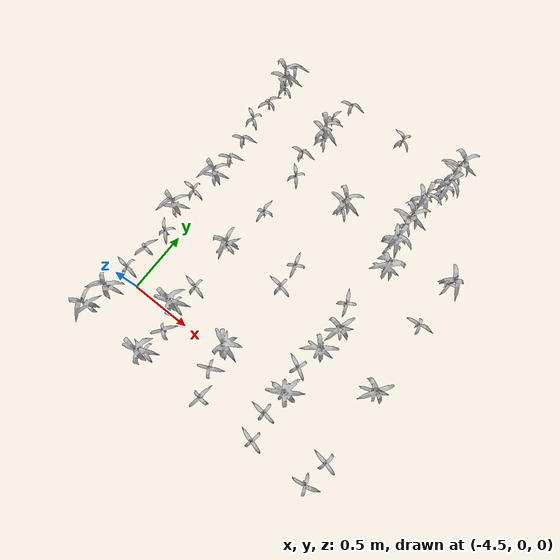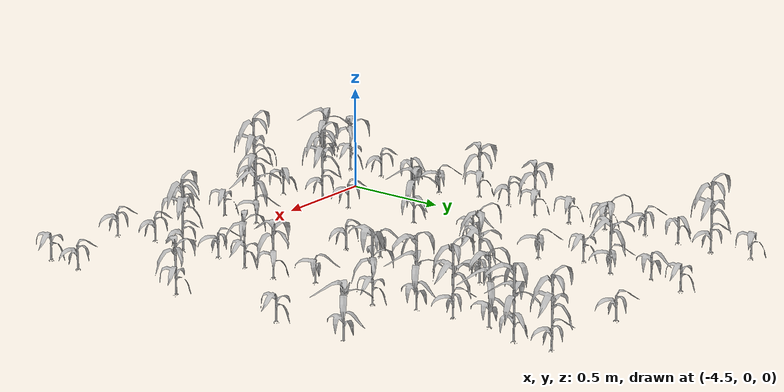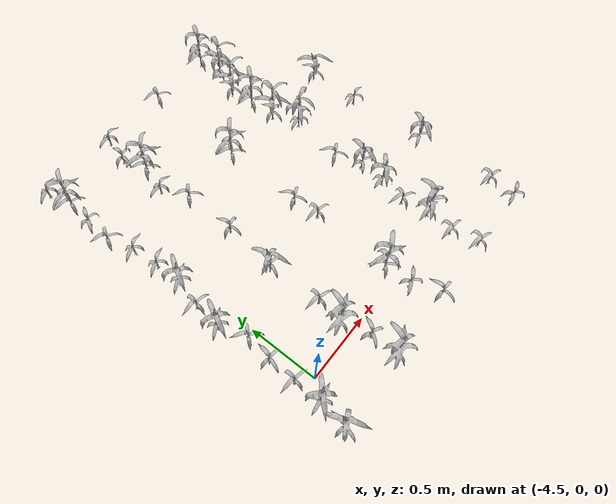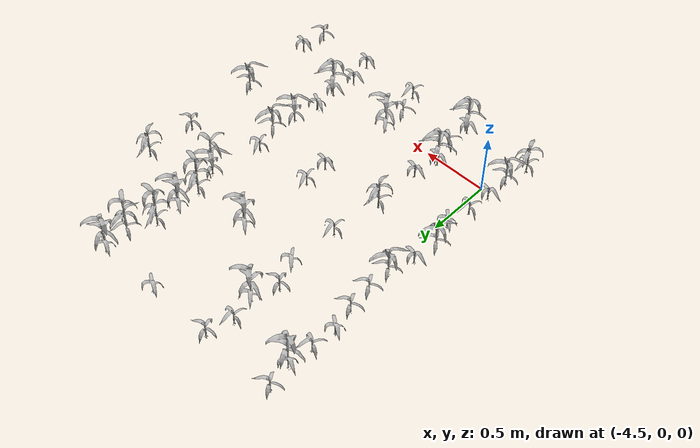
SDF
<sdf version="1.7">
 <world name="default">
  <model name="maize_-4.641265424464105_-0.3149999999999995">
   <static>1</static>
   <link name="link">
    <inertial>
     <mass>0.2</mass>
     <inertia>
      <ixx>0.166667</ixx>
      <ixy>0</ixy>
      <ixz>0</ixz>
      <iyy>0.166667</iyy>
      <iyz>0</iyz>
      <izz>0.166667</izz>
     </inertia>
    </inertial>
    <collision name="collision">
     <geometry><mesh><uri>model://corn_4/meshes/corn.dae</uri><scale>0.25 0.25 0.25</scale></mesh></geometry>
     <surface>
      <friction><ode><mu>0</mu><mu2>0</mu2></ode></friction>
      <contact><ode><kp>0</kp><kd>0</kd><max_vel>0</max_vel><min_depth>0.002</min_depth></ode></contact>
     </surface>
    </collision>
    <visual name="visual">
     <geometry><mesh><uri>model://corn_4/meshes/corn.dae</uri><scale>0.25 0.25 0.25</scale></mesh></geometry>
    </visual>
    <velocity_decay><linear>0</linear><angular>0</angular></velocity_decay>
   </link>
   <pose>-4.64126 -0.315 0.05 0 -0 1.39302</pose>
  </model>
  <model name="maize_-4.607150826464587_-0.1200000000000001">
   <static>1</static>
   <link name="link">
    <inertial>
     <mass>0.2</mass>
     <inertia>
      <ixx>0.166667</ixx>
      <ixy>0</ixy>
      <ixz>0</ixz>
      <iyy>0.166667</iyy>
      <iyz>0</iyz>
      <izz>0.166667</izz>
     </inertia>
    </inertial>
    <collision name="collision">
     <geometry><mesh><uri>model://corn_4/meshes/corn.dae</uri><scale>0.25 0.25 0.25</scale></mesh></geometry>
     <surface>
      <friction><ode><mu>0</mu><mu2>0</mu2></ode></friction>
      <contact><ode><kp>0</kp><kd>0</kd><max_vel>0</max_vel><min_depth>0.002</min_depth></ode></contact>
     </surface>
    </collision>
    <visual name="visual">
     <geometry><mesh><uri>model://corn_4/meshes/corn.dae</uri><scale>0.25 0.25 0.25</scale></mesh></geometry>
    </visual>
    <velocity_decay><linear>0</linear><angular>0</angular></velocity_decay>
   </link>
   <pose>-4.60715 -0.12 0.05 0 -0 0.20456</pose>
  </model>
  <model name="maize_-4.609371521306536_0.07500000000000018">
   <static>1</static>
   <link name="link">
    <inertial>
     <mass>0.2</mass>
     <inertia>
      <ixx>0.166667</ixx>
      <ixy>0</ixy>
      <ixz>0</ixz>
      <iyy>0.166667</iyy>
      <iyz>0</iyz>
      <izz>0.166667</izz>
     </inertia>
    </inertial>
    <collision name="collision">
     <geometry><mesh><uri>model://corn_3/meshes/corn.dae</uri><scale>0.25 0.25 0.25</scale></mesh></geometry>
     <surface>
      <friction><ode><mu>0</mu><mu2>0</mu2></ode></friction>
      <contact><ode><kp>0</kp><kd>0</kd><max_vel>0</max_vel><min_depth>0.002</min_depth></ode></contact>
     </surface>
    </collision>
    <visual name="visual">
     <geometry><mesh><uri>model://corn_3/meshes/corn.dae</uri><scale>0.25 0.25 0.25</scale></mesh></geometry>
    </visual>
    <velocity_decay><linear>0</linear><angular>0</angular></velocity_decay>
   </link>
   <pose>-4.60937 0.075 0.05 0 -0 3.04615</pose>
  </model>
  <model name="maize_-4.602589979055056_0.27000000000000046">
   <static>1</static>
   <link name="link">
    <inertial>
     <mass>0.2</mass>
     <inertia>
      <ixx>0.166667</ixx>
      <ixy>0</ixy>
      <ixz>0</ixz>
      <iyy>0.166667</iyy>
      <iyz>0</iyz>
      <izz>0.166667</izz>
     </inertia>
    </inertial>
    <collision name="collision">
     <geometry><mesh><uri>model://corn_3/meshes/corn.dae</uri><scale>0.25 0.25 0.25</scale></mesh></geometry>
     <surface>
      <friction><ode><mu>0</mu><mu2>0</mu2></ode></friction>
      <contact><ode><kp>0</kp><kd>0</kd><max_vel>0</max_vel><min_depth>0.002</min_depth></ode></contact>
     </surface>
    </collision>
    <visual name="visual">
     <geometry><mesh><uri>model://corn_3/meshes/corn.dae</uri><scale>0.25 0.25 0.25</scale></mesh></geometry>
    </visual>
    <velocity_decay><linear>0</linear><angular>0</angular></velocity_decay>
   </link>
   <pose>-4.60259 0.27 0.05 0 -0 1.35027</pose>
  </model>
  <model name="maize_-4.570653018177786_0.46500000000000075">
   <static>1</static>
   <link name="link">
    <inertial>
     <mass>0.2</mass>
     <inertia>
      <ixx>0.166667</ixx>
      <ixy>0</ixy>
      <ixz>0</ixz>
      <iyy>0.166667</iyy>
      <iyz>0</iyz>
      <izz>0.166667</izz>
     </inertia>
    </inertial>
    <collision name="collision">
     <geometry><mesh><uri>model://corn_3/meshes/corn.dae</uri><scale>0.25 0.25 0.25</scale></mesh></geometry>
     <surface>
      <friction><ode><mu>0</mu><mu2>0</mu2></ode></friction>
      <contact><ode><kp>0</kp><kd>0</kd><max_vel>0</max_vel><min_depth>0.002</min_depth></ode></contact>
     </surface>
    </collision>
    <visual name="visual">
     <geometry><mesh><uri>model://corn_3/meshes/corn.dae</uri><scale>0.25 0.25 0.25</scale></mesh></geometry>
    </visual>
    <velocity_decay><linear>0</linear><angular>0</angular></velocity_decay>
   </link>
   <pose>-4.57065 0.465 0.05 0 -0 2.42042</pose>
  </model>
  <model name="maize_-4.63863826151183_0.6600000000000001">
   <static>1</static>
   <link name="link">
    <inertial>
     <mass>0.2</mass>
     <inertia>
      <ixx>0.166667</ixx>
      <ixy>0</ixy>
      <ixz>0</ixz>
      <iyy>0.166667</iyy>
      <iyz>0</iyz>
      <izz>0.166667</izz>
     </inertia>
    </inertial>
    <collision name="collision">
     <geometry><mesh><uri>model://corn_4/meshes/corn.dae</uri><scale>0.25 0.25 0.25</scale></mesh></geometry>
     <surface>
      <friction><ode><mu>0</mu><mu2>0</mu2></ode></friction>
      <contact><ode><kp>0</kp><kd>0</kd><max_vel>0</max_vel><min_depth>0.002</min_depth></ode></contact>
     </surface>
    </collision>
    <visual name="visual">
     <geometry><mesh><uri>model://corn_4/meshes/corn.dae</uri><scale>0.25 0.25 0.25</scale></mesh></geometry>
    </visual>
    <velocity_decay><linear>0</linear><angular>0</angular></velocity_decay>
   </link>
   <pose>-4.63864 0.66 0.05 0 -0 0.585221</pose>
  </model>
  <model name="maize_-4.616977580214433_0.8550000000000004">
   <static>1</static>
   <link name="link">
    <inertial>
     <mass>0.2</mass>
     <inertia>
      <ixx>0.166667</ixx>
      <ixy>0</ixy>
      <ixz>0</ixz>
      <iyy>0.166667</iyy>
      <iyz>0</iyz>
      <izz>0.166667</izz>
     </inertia>
    </inertial>
    <collision name="collision">
     <geometry><mesh><uri>model://corn_3/meshes/corn.dae</uri><scale>0.25 0.25 0.25</scale></mesh></geometry>
     <surface>
      <friction><ode><mu>0</mu><mu2>0</mu2></ode></friction>
      <contact><ode><kp>0</kp><kd>0</kd><max_vel>0</max_vel><min_depth>0.002</min_depth></ode></contact>
     </surface>
    </collision>
    <visual name="visual">
     <geometry><mesh><uri>model://corn_3/meshes/corn.dae</uri><scale>0.25 0.25 0.25</scale></mesh></geometry>
    </visual>
    <velocity_decay><linear>0</linear><angular>0</angular></velocity_decay>
   </link>
   <pose>-4.61698 0.855 0.05 0 -0 3.05886</pose>
  </model>
  <model name="maize_-4.561774898540121_1.0500000000000007">
   <static>1</static>
   <link name="link">
    <inertial>
     <mass>0.2</mass>
     <inertia>
      <ixx>0.166667</ixx>
      <ixy>0</ixy>
      <ixz>0</ixz>
      <iyy>0.166667</iyy>
      <iyz>0</iyz>
      <izz>0.166667</izz>
     </inertia>
    </inertial>
    <collision name="collision">
     <geometry><mesh><uri>model://corn_4/meshes/corn.dae</uri><scale>0.25 0.25 0.25</scale></mesh></geometry>
     <surface>
      <friction><ode><mu>0</mu><mu2>0</mu2></ode></friction>
      <contact><ode><kp>0</kp><kd>0</kd><max_vel>0</max_vel><min_depth>0.002</min_depth></ode></contact>
     </surface>
    </collision>
    <visual name="visual">
     <geometry><mesh><uri>model://corn_4/meshes/corn.dae</uri><scale>0.25 0.25 0.25</scale></mesh></geometry>
    </visual>
    <velocity_decay><linear>0</linear><angular>0</angular></velocity_decay>
   </link>
   <pose>-4.56177 1.05 0.05 0 -0 0.518835</pose>
  </model>
  <model name="maize_-4.569922193897871_1.245">
   <static>1</static>
   <link name="link">
    <inertial>
     <mass>0.2</mass>
     <inertia>
      <ixx>0.166667</ixx>
      <ixy>0</ixy>
      <ixz>0</ixz>
      <iyy>0.166667</iyy>
      <iyz>0</iyz>
      <izz>0.166667</izz>
     </inertia>
    </inertial>
    <collision name="collision">
     <geometry><mesh><uri>model://corn_3/meshes/corn.dae</uri><scale>0.25 0.25 0.25</scale></mesh></geometry>
     <surface>
      <friction><ode><mu>0</mu><mu2>0</mu2></ode></friction>
      <contact><ode><kp>0</kp><kd>0</kd><max_vel>0</max_vel><min_depth>0.002</min_depth></ode></contact>
     </surface>
    </collision>
    <visual name="visual">
     <geometry><mesh><uri>model://corn_3/meshes/corn.dae</uri><scale>0.25 0.25 0.25</scale></mesh></geometry>
    </visual>
    <velocity_decay><linear>0</linear><angular>0</angular></velocity_decay>
   </link>
   <pose>-4.56992 1.245 0.05 0 -0 0.488933</pose>
  </model>
  <model name="maize_-4.58929504737528_1.4400000000000004">
   <static>1</static>
   <link name="link">
    <inertial>
     <mass>0.2</mass>
     <inertia>
      <ixx>0.166667</ixx>
      <ixy>0</ixy>
      <ixz>0</ixz>
      <iyy>0.166667</iyy>
      <iyz>0</iyz>
      <izz>0.166667</izz>
     </inertia>
    </inertial>
    <collision name="collision">
     <geometry><mesh><uri>model://corn_3/meshes/corn.dae</uri><scale>0.25 0.25 0.25</scale></mesh></geometry>
     <surface>
      <friction><ode><mu>0</mu><mu2>0</mu2></ode></friction>
      <contact><ode><kp>0</kp><kd>0</kd><max_vel>0</max_vel><min_depth>0.002</min_depth></ode></contact>
     </surface>
    </collision>
    <visual name="visual">
     <geometry><mesh><uri>model://corn_3/meshes/corn.dae</uri><scale>0.25 0.25 0.25</scale></mesh></geometry>
    </visual>
    <velocity_decay><linear>0</linear><angular>0</angular></velocity_decay>
   </link>
   <pose>-4.58929 1.44 0.05 0 -0 0.408999</pose>
  </model>
  <model name="maize_-4.639935727970333_1.6350000000000007">
   <static>1</static>
   <link name="link">
    <inertial>
     <mass>0.2</mass>
     <inertia>
      <ixx>0.166667</ixx>
      <ixy>0</ixy>
      <ixz>0</ixz>
      <iyy>0.166667</iyy>
      <iyz>0</iyz>
      <izz>0.166667</izz>
     </inertia>
    </inertial>
    <collision name="collision">
     <geometry><mesh><uri>model://corn_3/meshes/corn.dae</uri><scale>0.25 0.25 0.25</scale></mesh></geometry>
     <surface>
      <friction><ode><mu>0</mu><mu2>0</mu2></ode></friction>
      <contact><ode><kp>0</kp><kd>0</kd><max_vel>0</max_vel><min_depth>0.002</min_depth></ode></contact>
     </surface>
    </collision>
    <visual name="visual">
     <geometry><mesh><uri>model://corn_3/meshes/corn.dae</uri><scale>0.25 0.25 0.25</scale></mesh></geometry>
    </visual>
    <velocity_decay><linear>0</linear><angular>0</angular></velocity_decay>
   </link>
   <pose>-4.63994 1.635 0.05 0 -0 2.59627</pose>
  </model>
  <model name="maize_-4.6269057923029315_1.83">
   <static>1</static>
   <link name="link">
    <inertial>
     <mass>0.2</mass>
     <inertia>
      <ixx>0.166667</ixx>
      <ixy>0</ixy>
      <ixz>0</ixz>
      <iyy>0.166667</iyy>
      <iyz>0</iyz>
      <izz>0.166667</izz>
     </inertia>
    </inertial>
    <collision name="collision">
     <geometry><mesh><uri>model://corn_3/meshes/corn.dae</uri><scale>0.25 0.25 0.25</scale></mesh></geometry>
     <surface>
      <friction><ode><mu>0</mu><mu2>0</mu2></ode></friction>
      <contact><ode><kp>0</kp><kd>0</kd><max_vel>0</max_vel><min_depth>0.002</min_depth></ode></contact>
     </surface>
    </collision>
    <visual name="visual">
     <geometry><mesh><uri>model://corn_3/meshes/corn.dae</uri><scale>0.25 0.25 0.25</scale></mesh></geometry>
    </visual>
    <velocity_decay><linear>0</linear><angular>0</angular></velocity_decay>
   </link>
   <pose>-4.62691 1.83 0.05 0 -0 1.14885</pose>
  </model>
  <model name="maize_-4.6076522750928195_2.0250000000000004">
   <static>1</static>
   <link name="link">
    <inertial>
     <mass>0.2</mass>
     <inertia>
      <ixx>0.166667</ixx>
      <ixy>0</ixy>
      <ixz>0</ixz>
      <iyy>0.166667</iyy>
      <iyz>0</iyz>
      <izz>0.166667</izz>
     </inertia>
    </inertial>
    <collision name="collision">
     <geometry><mesh><uri>model://corn_5/meshes/corn.dae</uri><scale>0.25 0.25 0.25</scale></mesh></geometry>
     <surface>
      <friction><ode><mu>0</mu><mu2>0</mu2></ode></friction>
      <contact><ode><kp>0</kp><kd>0</kd><max_vel>0</max_vel><min_depth>0.002</min_depth></ode></contact>
     </surface>
    </collision>
    <visual name="visual">
     <geometry><mesh><uri>model://corn_5/meshes/corn.dae</uri><scale>0.25 0.25 0.25</scale></mesh></geometry>
    </visual>
    <velocity_decay><linear>0</linear><angular>0</angular></velocity_decay>
   </link>
   <pose>-4.60765 2.025 0.05 0 -0 2.78431</pose>
  </model>
  <model name="maize_-4.648252382986778_2.2200000000000006">
   <static>1</static>
   <link name="link">
    <inertial>
     <mass>0.2</mass>
     <inertia>
      <ixx>0.166667</ixx>
      <ixy>0</ixy>
      <ixz>0</ixz>
      <iyy>0.166667</iyy>
      <iyz>0</iyz>
      <izz>0.166667</izz>
     </inertia>
    </inertial>
    <collision name="collision">
     <geometry><mesh><uri>model://corn_3/meshes/corn.dae</uri><scale>0.25 0.25 0.25</scale></mesh></geometry>
     <surface>
      <friction><ode><mu>0</mu><mu2>0</mu2></ode></friction>
      <contact><ode><kp>0</kp><kd>0</kd><max_vel>0</max_vel><min_depth>0.002</min_depth></ode></contact>
     </surface>
    </collision>
    <visual name="visual">
     <geometry><mesh><uri>model://corn_3/meshes/corn.dae</uri><scale>0.25 0.25 0.25</scale></mesh></geometry>
    </visual>
    <velocity_decay><linear>0</linear><angular>0</angular></velocity_decay>
   </link>
   <pose>-4.64825 2.22 0.05 0 -0 0.483202</pose>
  </model>
  <model name="maize_-4.094737946050595_-0.3149999999999995">
   <static>1</static>
   <link name="link">
    <inertial>
     <mass>0.2</mass>
     <inertia>
      <ixx>0.166667</ixx>
      <ixy>0</ixy>
      <ixz>0</ixz>
      <iyy>0.166667</iyy>
      <iyz>0</iyz>
      <izz>0.166667</izz>
     </inertia>
    </inertial>
    <collision name="collision">
     <geometry><mesh><uri>model://corn_5/meshes/corn.dae</uri><scale>0.25 0.25 0.25</scale></mesh></geometry>
     <surface>
      <friction><ode><mu>0</mu><mu2>0</mu2></ode></friction>
      <contact><ode><kp>0</kp><kd>0</kd><max_vel>0</max_vel><min_depth>0.002</min_depth></ode></contact>
     </surface>
    </collision>
    <visual name="visual">
     <geometry><mesh><uri>model://corn_5/meshes/corn.dae</uri><scale>0.25 0.25 0.25</scale></mesh></geometry>
    </visual>
    <velocity_decay><linear>0</linear><angular>0</angular></velocity_decay>
   </link>
   <pose>-4.09474 -0.315 0.05 0 -0 2.97912</pose>
  </model>
  <model name="maize_-4.0847048664978685_-0.1200000000000001">
   <static>1</static>
   <link name="link">
    <inertial>
     <mass>0.2</mass>
     <inertia>
      <ixx>0.166667</ixx>
      <ixy>0</ixy>
      <ixz>0</ixz>
      <iyy>0.166667</iyy>
      <iyz>0</iyz>
      <izz>0.166667</izz>
     </inertia>
    </inertial>
    <collision name="collision">
     <geometry><mesh><uri>model://corn_3/meshes/corn.dae</uri><scale>0.25 0.25 0.25</scale></mesh></geometry>
     <surface>
      <friction><ode><mu>0</mu><mu2>0</mu2></ode></friction>
      <contact><ode><kp>0</kp><kd>0</kd><max_vel>0</max_vel><min_depth>0.002</min_depth></ode></contact>
     </surface>
    </collision>
    <visual name="visual">
     <geometry><mesh><uri>model://corn_3/meshes/corn.dae</uri><scale>0.25 0.25 0.25</scale></mesh></geometry>
    </visual>
    <velocity_decay><linear>0</linear><angular>0</angular></velocity_decay>
   </link>
   <pose>-4.0847 -0.12 0.05 0 -0 0.978531</pose>
  </model>
  <model name="maize_-4.14703841915191_0.07500000000000018">
   <static>1</static>
   <link name="link">
    <inertial>
     <mass>0.2</mass>
     <inertia>
      <ixx>0.166667</ixx>
      <ixy>0</ixy>
      <ixz>0</ixz>
      <iyy>0.166667</iyy>
      <iyz>0</iyz>
      <izz>0.166667</izz>
     </inertia>
    </inertial>
    <collision name="collision">
     <geometry><mesh><uri>model://corn_5/meshes/corn.dae</uri><scale>0.25 0.25 0.25</scale></mesh></geometry>
     <surface>
      <friction><ode><mu>0</mu><mu2>0</mu2></ode></friction>
      <contact><ode><kp>0</kp><kd>0</kd><max_vel>0</max_vel><min_depth>0.002</min_depth></ode></contact>
     </surface>
    </collision>
    <visual name="visual">
     <geometry><mesh><uri>model://corn_5/meshes/corn.dae</uri><scale>0.25 0.25 0.25</scale></mesh></geometry>
    </visual>
    <velocity_decay><linear>0</linear><angular>0</angular></velocity_decay>
   </link>
   <pose>-4.14704 0.075 0.05 0 -0 2.95774</pose>
  </model>
  <model name="maize_-4.105810107287696_0.27000000000000046">
   <static>1</static>
   <link name="link">
    <inertial>
     <mass>0.2</mass>
     <inertia>
      <ixx>0.166667</ixx>
      <ixy>0</ixy>
      <ixz>0</ixz>
      <iyy>0.166667</iyy>
      <iyz>0</iyz>
      <izz>0.166667</izz>
     </inertia>
    </inertial>
    <collision name="collision">
     <geometry><mesh><uri>model://corn_3/meshes/corn.dae</uri><scale>0.25 0.25 0.25</scale></mesh></geometry>
     <surface>
      <friction><ode><mu>0</mu><mu2>0</mu2></ode></friction>
      <contact><ode><kp>0</kp><kd>0</kd><max_vel>0</max_vel><min_depth>0.002</min_depth></ode></contact>
     </surface>
    </collision>
    <visual name="visual">
     <geometry><mesh><uri>model://corn_3/meshes/corn.dae</uri><scale>0.25 0.25 0.25</scale></mesh></geometry>
    </visual>
    <velocity_decay><linear>0</linear><angular>0</angular></velocity_decay>
   </link>
   <pose>-4.10581 0.27 0.05 0 -0 2.96152</pose>
  </model>
  <model name="maize_-4.116764497974255_0.6600000000000001">
   <static>1</static>
   <link name="link">
    <inertial>
     <mass>0.2</mass>
     <inertia>
      <ixx>0.166667</ixx>
      <ixy>0</ixy>
      <ixz>0</ixz>
      <iyy>0.166667</iyy>
      <iyz>0</iyz>
      <izz>0.166667</izz>
     </inertia>
    </inertial>
    <collision name="collision">
     <geometry><mesh><uri>model://corn_4/meshes/corn.dae</uri><scale>0.25 0.25 0.25</scale></mesh></geometry>
     <surface>
      <friction><ode><mu>0</mu><mu2>0</mu2></ode></friction>
      <contact><ode><kp>0</kp><kd>0</kd><max_vel>0</max_vel><min_depth>0.002</min_depth></ode></contact>
     </surface>
    </collision>
    <visual name="visual">
     <geometry><mesh><uri>model://corn_4/meshes/corn.dae</uri><scale>0.25 0.25 0.25</scale></mesh></geometry>
    </visual>
    <velocity_decay><linear>0</linear><angular>0</angular></velocity_decay>
   </link>
   <pose>-4.11676 0.66 0.05 0 -0 1.27382</pose>
  </model>
  <model name="maize_-4.066907764565944_1.0500000000000007">
   <static>1</static>
   <link name="link">
    <inertial>
     <mass>0.2</mass>
     <inertia>
      <ixx>0.166667</ixx>
      <ixy>0</ixy>
      <ixz>0</ixz>
      <iyy>0.166667</iyy>
      <iyz>0</iyz>
      <izz>0.166667</izz>
     </inertia>
    </inertial>
    <collision name="collision">
     <geometry><mesh><uri>model://corn_3/meshes/corn.dae</uri><scale>0.25 0.25 0.25</scale></mesh></geometry>
     <surface>
      <friction><ode><mu>0</mu><mu2>0</mu2></ode></friction>
      <contact><ode><kp>0</kp><kd>0</kd><max_vel>0</max_vel><min_depth>0.002</min_depth></ode></contact>
     </surface>
    </collision>
    <visual name="visual">
     <geometry><mesh><uri>model://corn_3/meshes/corn.dae</uri><scale>0.25 0.25 0.25</scale></mesh></geometry>
    </visual>
    <velocity_decay><linear>0</linear><angular>0</angular></velocity_decay>
   </link>
   <pose>-4.06691 1.05 0.05 0 -0 1.66951</pose>
  </model>
  <model name="maize_-4.052457962941916_1.4400000000000004">
   <static>1</static>
   <link name="link">
    <inertial>
     <mass>0.2</mass>
     <inertia>
      <ixx>0.166667</ixx>
      <ixy>0</ixy>
      <ixz>0</ixz>
      <iyy>0.166667</iyy>
      <iyz>0</iyz>
      <izz>0.166667</izz>
     </inertia>
    </inertial>
    <collision name="collision">
     <geometry><mesh><uri>model://corn_3/meshes/corn.dae</uri><scale>0.25 0.25 0.25</scale></mesh></geometry>
     <surface>
      <friction><ode><mu>0</mu><mu2>0</mu2></ode></friction>
      <contact><ode><kp>0</kp><kd>0</kd><max_vel>0</max_vel><min_depth>0.002</min_depth></ode></contact>
     </surface>
    </collision>
    <visual name="visual">
     <geometry><mesh><uri>model://corn_3/meshes/corn.dae</uri><scale>0.25 0.25 0.25</scale></mesh></geometry>
    </visual>
    <velocity_decay><linear>0</linear><angular>0</angular></velocity_decay>
   </link>
   <pose>-4.05246 1.44 0.05 0 -0 2.34268</pose>
  </model>
  <model name="maize_-4.136275961036169_1.6350000000000007">
   <static>1</static>
   <link name="link">
    <inertial>
     <mass>0.2</mass>
     <inertia>
      <ixx>0.166667</ixx>
      <ixy>0</ixy>
      <ixz>0</ixz>
      <iyy>0.166667</iyy>
      <iyz>0</iyz>
      <izz>0.166667</izz>
     </inertia>
    </inertial>
    <collision name="collision">
     <geometry><mesh><uri>model://corn_3/meshes/corn.dae</uri><scale>0.25 0.25 0.25</scale></mesh></geometry>
     <surface>
      <friction><ode><mu>0</mu><mu2>0</mu2></ode></friction>
      <contact><ode><kp>0</kp><kd>0</kd><max_vel>0</max_vel><min_depth>0.002</min_depth></ode></contact>
     </surface>
    </collision>
    <visual name="visual">
     <geometry><mesh><uri>model://corn_3/meshes/corn.dae</uri><scale>0.25 0.25 0.25</scale></mesh></geometry>
    </visual>
    <velocity_decay><linear>0</linear><angular>0</angular></velocity_decay>
   </link>
   <pose>-4.13628 1.635 0.05 0 -0 0.127472</pose>
  </model>
  <model name="maize_-4.072735206421104_1.83">
   <static>1</static>
   <link name="link">
    <inertial>
     <mass>0.2</mass>
     <inertia>
      <ixx>0.166667</ixx>
      <ixy>0</ixy>
      <ixz>0</ixz>
      <iyy>0.166667</iyy>
      <iyz>0</iyz>
      <izz>0.166667</izz>
     </inertia>
    </inertial>
    <collision name="collision">
     <geometry><mesh><uri>model://corn_5/meshes/corn.dae</uri><scale>0.25 0.25 0.25</scale></mesh></geometry>
     <surface>
      <friction><ode><mu>0</mu><mu2>0</mu2></ode></friction>
      <contact><ode><kp>0</kp><kd>0</kd><max_vel>0</max_vel><min_depth>0.002</min_depth></ode></contact>
     </surface>
    </collision>
    <visual name="visual">
     <geometry><mesh><uri>model://corn_5/meshes/corn.dae</uri><scale>0.25 0.25 0.25</scale></mesh></geometry>
    </visual>
    <velocity_decay><linear>0</linear><angular>0</angular></velocity_decay>
   </link>
   <pose>-4.07273 1.83 0.05 0 -0 2.35061</pose>
  </model>
  <model name="maize_-4.117701361722709_2.0250000000000004">
   <static>1</static>
   <link name="link">
    <inertial>
     <mass>0.2</mass>
     <inertia>
      <ixx>0.166667</ixx>
      <ixy>0</ixy>
      <ixz>0</ixz>
      <iyy>0.166667</iyy>
      <iyz>0</iyz>
      <izz>0.166667</izz>
     </inertia>
    </inertial>
    <collision name="collision">
     <geometry><mesh><uri>model://corn_3/meshes/corn.dae</uri><scale>0.25 0.25 0.25</scale></mesh></geometry>
     <surface>
      <friction><ode><mu>0</mu><mu2>0</mu2></ode></friction>
      <contact><ode><kp>0</kp><kd>0</kd><max_vel>0</max_vel><min_depth>0.002</min_depth></ode></contact>
     </surface>
    </collision>
    <visual name="visual">
     <geometry><mesh><uri>model://corn_3/meshes/corn.dae</uri><scale>0.25 0.25 0.25</scale></mesh></geometry>
    </visual>
    <velocity_decay><linear>0</linear><angular>0</angular></velocity_decay>
   </link>
   <pose>-4.1177 2.025 0.05 0 -0 1.50934</pose>
  </model>
  <model name="maize_-4.0650844698650035_2.2200000000000006">
   <static>1</static>
   <link name="link">
    <inertial>
     <mass>0.2</mass>
     <inertia>
      <ixx>0.166667</ixx>
      <ixy>0</ixy>
      <ixz>0</ixz>
      <iyy>0.166667</iyy>
      <iyz>0</iyz>
      <izz>0.166667</izz>
     </inertia>
    </inertial>
    <collision name="collision">
     <geometry><mesh><uri>model://corn_3/meshes/corn.dae</uri><scale>0.25 0.25 0.25</scale></mesh></geometry>
     <surface>
      <friction><ode><mu>0</mu><mu2>0</mu2></ode></friction>
      <contact><ode><kp>0</kp><kd>0</kd><max_vel>0</max_vel><min_depth>0.002</min_depth></ode></contact>
     </surface>
    </collision>
    <visual name="visual">
     <geometry><mesh><uri>model://corn_3/meshes/corn.dae</uri><scale>0.25 0.25 0.25</scale></mesh></geometry>
    </visual>
    <velocity_decay><linear>0</linear><angular>0</angular></velocity_decay>
   </link>
   <pose>-4.06508 2.22 0.05 0 -0 0.175383</pose>
  </model>
  <model name="maize_-3.56966367534651_-0.3149999999999995">
   <static>1</static>
   <link name="link">
    <inertial>
     <mass>0.2</mass>
     <inertia>
      <ixx>0.166667</ixx>
      <ixy>0</ixy>
      <ixz>0</ixz>
      <iyy>0.166667</iyy>
      <iyz>0</iyz>
      <izz>0.166667</izz>
     </inertia>
    </inertial>
    <collision name="collision">
     <geometry><mesh><uri>model://corn_3/meshes/corn.dae</uri><scale>0.25 0.25 0.25</scale></mesh></geometry>
     <surface>
      <friction><ode><mu>0</mu><mu2>0</mu2></ode></friction>
      <contact><ode><kp>0</kp><kd>0</kd><max_vel>0</max_vel><min_depth>0.002</min_depth></ode></contact>
     </surface>
    </collision>
    <visual name="visual">
     <geometry><mesh><uri>model://corn_3/meshes/corn.dae</uri><scale>0.25 0.25 0.25</scale></mesh></geometry>
    </visual>
    <velocity_decay><linear>0</linear><angular>0</angular></velocity_decay>
   </link>
   <pose>-3.56966 -0.315 0.05 0 -0 1.47019</pose>
  </model>
  <model name="maize_-3.6439980225239204_-0.1200000000000001">
   <static>1</static>
   <link name="link">
    <inertial>
     <mass>0.2</mass>
     <inertia>
      <ixx>0.166667</ixx>
      <ixy>0</ixy>
      <ixz>0</ixz>
      <iyy>0.166667</iyy>
      <iyz>0</iyz>
      <izz>0.166667</izz>
     </inertia>
    </inertial>
    <collision name="collision">
     <geometry><mesh><uri>model://corn_3/meshes/corn.dae</uri><scale>0.25 0.25 0.25</scale></mesh></geometry>
     <surface>
      <friction><ode><mu>0</mu><mu2>0</mu2></ode></friction>
      <contact><ode><kp>0</kp><kd>0</kd><max_vel>0</max_vel><min_depth>0.002</min_depth></ode></contact>
     </surface>
    </collision>
    <visual name="visual">
     <geometry><mesh><uri>model://corn_3/meshes/corn.dae</uri><scale>0.25 0.25 0.25</scale></mesh></geometry>
    </visual>
    <velocity_decay><linear>0</linear><angular>0</angular></velocity_decay>
   </link>
   <pose>-3.644 -0.12 0.05 0 -0 0.482823</pose>
  </model>
  <model name="maize_-3.649016030836854_0.07500000000000018">
   <static>1</static>
   <link name="link">
    <inertial>
     <mass>0.2</mass>
     <inertia>
      <ixx>0.166667</ixx>
      <ixy>0</ixy>
      <ixz>0</ixz>
      <iyy>0.166667</iyy>
      <iyz>0</iyz>
      <izz>0.166667</izz>
     </inertia>
    </inertial>
    <collision name="collision">
     <geometry><mesh><uri>model://corn_5/meshes/corn.dae</uri><scale>0.25 0.25 0.25</scale></mesh></geometry>
     <surface>
      <friction><ode><mu>0</mu><mu2>0</mu2></ode></friction>
      <contact><ode><kp>0</kp><kd>0</kd><max_vel>0</max_vel><min_depth>0.002</min_depth></ode></contact>
     </surface>
    </collision>
    <visual name="visual">
     <geometry><mesh><uri>model://corn_5/meshes/corn.dae</uri><scale>0.25 0.25 0.25</scale></mesh></geometry>
    </visual>
    <velocity_decay><linear>0</linear><angular>0</angular></velocity_decay>
   </link>
   <pose>-3.64902 0.075 0.05 0 -0 2.23826</pose>
  </model>
  <model name="maize_-3.6047561290318724_0.6600000000000001">
   <static>1</static>
   <link name="link">
    <inertial>
     <mass>0.2</mass>
     <inertia>
      <ixx>0.166667</ixx>
      <ixy>0</ixy>
      <ixz>0</ixz>
      <iyy>0.166667</iyy>
      <iyz>0</iyz>
      <izz>0.166667</izz>
     </inertia>
    </inertial>
    <collision name="collision">
     <geometry><mesh><uri>model://corn_3/meshes/corn.dae</uri><scale>0.25 0.25 0.25</scale></mesh></geometry>
     <surface>
      <friction><ode><mu>0</mu><mu2>0</mu2></ode></friction>
      <contact><ode><kp>0</kp><kd>0</kd><max_vel>0</max_vel><min_depth>0.002</min_depth></ode></contact>
     </surface>
    </collision>
    <visual name="visual">
     <geometry><mesh><uri>model://corn_3/meshes/corn.dae</uri><scale>0.25 0.25 0.25</scale></mesh></geometry>
    </visual>
    <velocity_decay><linear>0</linear><angular>0</angular></velocity_decay>
   </link>
   <pose>-3.60476 0.66 0.05 0 -0 3.01888</pose>
  </model>
  <model name="maize_-3.6138944453700397_0.8550000000000004">
   <static>1</static>
   <link name="link">
    <inertial>
     <mass>0.2</mass>
     <inertia>
      <ixx>0.166667</ixx>
      <ixy>0</ixy>
      <ixz>0</ixz>
      <iyy>0.166667</iyy>
      <iyz>0</iyz>
      <izz>0.166667</izz>
     </inertia>
    </inertial>
    <collision name="collision">
     <geometry><mesh><uri>model://corn_3/meshes/corn.dae</uri><scale>0.25 0.25 0.25</scale></mesh></geometry>
     <surface>
      <friction><ode><mu>0</mu><mu2>0</mu2></ode></friction>
      <contact><ode><kp>0</kp><kd>0</kd><max_vel>0</max_vel><min_depth>0.002</min_depth></ode></contact>
     </surface>
    </collision>
    <visual name="visual">
     <geometry><mesh><uri>model://corn_3/meshes/corn.dae</uri><scale>0.25 0.25 0.25</scale></mesh></geometry>
    </visual>
    <velocity_decay><linear>0</linear><angular>0</angular></velocity_decay>
   </link>
   <pose>-3.61389 0.855 0.05 0 -0 1.90956</pose>
  </model>
  <model name="maize_-3.5989859878632102_1.4400000000000004">
   <static>1</static>
   <link name="link">
    <inertial>
     <mass>0.2</mass>
     <inertia>
      <ixx>0.166667</ixx>
      <ixy>0</ixy>
      <ixz>0</ixz>
      <iyy>0.166667</iyy>
      <iyz>0</iyz>
      <izz>0.166667</izz>
     </inertia>
    </inertial>
    <collision name="collision">
     <geometry><mesh><uri>model://corn_5/meshes/corn.dae</uri><scale>0.25 0.25 0.25</scale></mesh></geometry>
     <surface>
      <friction><ode><mu>0</mu><mu2>0</mu2></ode></friction>
      <contact><ode><kp>0</kp><kd>0</kd><max_vel>0</max_vel><min_depth>0.002</min_depth></ode></contact>
     </surface>
    </collision>
    <visual name="visual">
     <geometry><mesh><uri>model://corn_5/meshes/corn.dae</uri><scale>0.25 0.25 0.25</scale></mesh></geometry>
    </visual>
    <velocity_decay><linear>0</linear><angular>0</angular></velocity_decay>
   </link>
   <pose>-3.59899 1.44 0.05 0 -0 2.47317</pose>
  </model>
  <model name="maize_-3.5560025777483215_2.2200000000000006">
   <static>1</static>
   <link name="link">
    <inertial>
     <mass>0.2</mass>
     <inertia>
      <ixx>0.166667</ixx>
      <ixy>0</ixy>
      <ixz>0</ixz>
      <iyy>0.166667</iyy>
      <iyz>0</iyz>
      <izz>0.166667</izz>
     </inertia>
    </inertial>
    <collision name="collision">
     <geometry><mesh><uri>model://corn_3/meshes/corn.dae</uri><scale>0.25 0.25 0.25</scale></mesh></geometry>
     <surface>
      <friction><ode><mu>0</mu><mu2>0</mu2></ode></friction>
      <contact><ode><kp>0</kp><kd>0</kd><max_vel>0</max_vel><min_depth>0.002</min_depth></ode></contact>
     </surface>
    </collision>
    <visual name="visual">
     <geometry><mesh><uri>model://corn_3/meshes/corn.dae</uri><scale>0.25 0.25 0.25</scale></mesh></geometry>
    </visual>
    <velocity_decay><linear>0</linear><angular>0</angular></velocity_decay>
   </link>
   <pose>-3.556 2.22 0.05 0 -0 2.69037</pose>
  </model>
  <model name="maize_-3.1006938527801355_-0.3149999999999995">
   <static>1</static>
   <link name="link">
    <inertial>
     <mass>0.2</mass>
     <inertia>
      <ixx>0.166667</ixx>
      <ixy>0</ixy>
      <ixz>0</ixz>
      <iyy>0.166667</iyy>
      <iyz>0</iyz>
      <izz>0.166667</izz>
     </inertia>
    </inertial>
    <collision name="collision">
     <geometry><mesh><uri>model://corn_3/meshes/corn.dae</uri><scale>0.25 0.25 0.25</scale></mesh></geometry>
     <surface>
      <friction><ode><mu>0</mu><mu2>0</mu2></ode></friction>
      <contact><ode><kp>0</kp><kd>0</kd><max_vel>0</max_vel><min_depth>0.002</min_depth></ode></contact>
     </surface>
    </collision>
    <visual name="visual">
     <geometry><mesh><uri>model://corn_3/meshes/corn.dae</uri><scale>0.25 0.25 0.25</scale></mesh></geometry>
    </visual>
    <velocity_decay><linear>0</linear><angular>0</angular></velocity_decay>
   </link>
   <pose>-3.10069 -0.315 0.05 0 -0 2.92675</pose>
  </model>
  <model name="maize_-3.1472659425796854_-0.1200000000000001">
   <static>1</static>
   <link name="link">
    <inertial>
     <mass>0.2</mass>
     <inertia>
      <ixx>0.166667</ixx>
      <ixy>0</ixy>
      <ixz>0</ixz>
      <iyy>0.166667</iyy>
      <iyz>0</iyz>
      <izz>0.166667</izz>
     </inertia>
    </inertial>
    <collision name="collision">
     <geometry><mesh><uri>model://corn_3/meshes/corn.dae</uri><scale>0.25 0.25 0.25</scale></mesh></geometry>
     <surface>
      <friction><ode><mu>0</mu><mu2>0</mu2></ode></friction>
      <contact><ode><kp>0</kp><kd>0</kd><max_vel>0</max_vel><min_depth>0.002</min_depth></ode></contact>
     </surface>
    </collision>
    <visual name="visual">
     <geometry><mesh><uri>model://corn_3/meshes/corn.dae</uri><scale>0.25 0.25 0.25</scale></mesh></geometry>
    </visual>
    <velocity_decay><linear>0</linear><angular>0</angular></velocity_decay>
   </link>
   <pose>-3.14727 -0.12 0.05 0 -0 3.10471</pose>
  </model>
  <model name="maize_-3.1221184938691247_0.07500000000000018">
   <static>1</static>
   <link name="link">
    <inertial>
     <mass>0.2</mass>
     <inertia>
      <ixx>0.166667</ixx>
      <ixy>0</ixy>
      <ixz>0</ixz>
      <iyy>0.166667</iyy>
      <iyz>0</iyz>
      <izz>0.166667</izz>
     </inertia>
    </inertial>
    <collision name="collision">
     <geometry><mesh><uri>model://corn_5/meshes/corn.dae</uri><scale>0.25 0.25 0.25</scale></mesh></geometry>
     <surface>
      <friction><ode><mu>0</mu><mu2>0</mu2></ode></friction>
      <contact><ode><kp>0</kp><kd>0</kd><max_vel>0</max_vel><min_depth>0.002</min_depth></ode></contact>
     </surface>
    </collision>
    <visual name="visual">
     <geometry><mesh><uri>model://corn_5/meshes/corn.dae</uri><scale>0.25 0.25 0.25</scale></mesh></geometry>
    </visual>
    <velocity_decay><linear>0</linear><angular>0</angular></velocity_decay>
   </link>
   <pose>-3.12212 0.075 0.05 0 -0 3.13951</pose>
  </model>
  <model name="maize_-3.1467820280613807_0.27000000000000046">
   <static>1</static>
   <link name="link">
    <inertial>
     <mass>0.2</mass>
     <inertia>
      <ixx>0.166667</ixx>
      <ixy>0</ixy>
      <ixz>0</ixz>
      <iyy>0.166667</iyy>
      <iyz>0</iyz>
      <izz>0.166667</izz>
     </inertia>
    </inertial>
    <collision name="collision">
     <geometry><mesh><uri>model://corn_3/meshes/corn.dae</uri><scale>0.25 0.25 0.25</scale></mesh></geometry>
     <surface>
      <friction><ode><mu>0</mu><mu2>0</mu2></ode></friction>
      <contact><ode><kp>0</kp><kd>0</kd><max_vel>0</max_vel><min_depth>0.002</min_depth></ode></contact>
     </surface>
    </collision>
    <visual name="visual">
     <geometry><mesh><uri>model://corn_3/meshes/corn.dae</uri><scale>0.25 0.25 0.25</scale></mesh></geometry>
    </visual>
    <velocity_decay><linear>0</linear><angular>0</angular></velocity_decay>
   </link>
   <pose>-3.14678 0.27 0.05 0 -0 2.72136</pose>
  </model>
  <model name="maize_-3.1059538318940065_0.46500000000000075">
   <static>1</static>
   <link name="link">
    <inertial>
     <mass>0.2</mass>
     <inertia>
      <ixx>0.166667</ixx>
      <ixy>0</ixy>
      <ixz>0</ixz>
      <iyy>0.166667</iyy>
      <iyz>0</iyz>
      <izz>0.166667</izz>
     </inertia>
    </inertial>
    <collision name="collision">
     <geometry><mesh><uri>model://corn_4/meshes/corn.dae</uri><scale>0.25 0.25 0.25</scale></mesh></geometry>
     <surface>
      <friction><ode><mu>0</mu><mu2>0</mu2></ode></friction>
      <contact><ode><kp>0</kp><kd>0</kd><max_vel>0</max_vel><min_depth>0.002</min_depth></ode></contact>
     </surface>
    </collision>
    <visual name="visual">
     <geometry><mesh><uri>model://corn_4/meshes/corn.dae</uri><scale>0.25 0.25 0.25</scale></mesh></geometry>
    </visual>
    <velocity_decay><linear>0</linear><angular>0</angular></velocity_decay>
   </link>
   <pose>-3.10595 0.465 0.05 0 -0 0.094154</pose>
  </model>
  <model name="maize_-3.076943686600083_0.6600000000000001">
   <static>1</static>
   <link name="link">
    <inertial>
     <mass>0.2</mass>
     <inertia>
      <ixx>0.166667</ixx>
      <ixy>0</ixy>
      <ixz>0</ixz>
      <iyy>0.166667</iyy>
      <iyz>0</iyz>
      <izz>0.166667</izz>
     </inertia>
    </inertial>
    <collision name="collision">
     <geometry><mesh><uri>model://corn_4/meshes/corn.dae</uri><scale>0.25 0.25 0.25</scale></mesh></geometry>
     <surface>
      <friction><ode><mu>0</mu><mu2>0</mu2></ode></friction>
      <contact><ode><kp>0</kp><kd>0</kd><max_vel>0</max_vel><min_depth>0.002</min_depth></ode></contact>
     </surface>
    </collision>
    <visual name="visual">
     <geometry><mesh><uri>model://corn_4/meshes/corn.dae</uri><scale>0.25 0.25 0.25</scale></mesh></geometry>
    </visual>
    <velocity_decay><linear>0</linear><angular>0</angular></velocity_decay>
   </link>
   <pose>-3.07694 0.66 0.05 0 -0 0.742772</pose>
  </model>
  <model name="maize_-3.141089387179867_0.8550000000000004">
   <static>1</static>
   <link name="link">
    <inertial>
     <mass>0.2</mass>
     <inertia>
      <ixx>0.166667</ixx>
      <ixy>0</ixy>
      <ixz>0</ixz>
      <iyy>0.166667</iyy>
      <iyz>0</iyz>
      <izz>0.166667</izz>
     </inertia>
    </inertial>
    <collision name="collision">
     <geometry><mesh><uri>model://corn_3/meshes/corn.dae</uri><scale>0.25 0.25 0.25</scale></mesh></geometry>
     <surface>
      <friction><ode><mu>0</mu><mu2>0</mu2></ode></friction>
      <contact><ode><kp>0</kp><kd>0</kd><max_vel>0</max_vel><min_depth>0.002</min_depth></ode></contact>
     </surface>
    </collision>
    <visual name="visual">
     <geometry><mesh><uri>model://corn_3/meshes/corn.dae</uri><scale>0.25 0.25 0.25</scale></mesh></geometry>
    </visual>
    <velocity_decay><linear>0</linear><angular>0</angular></velocity_decay>
   </link>
   <pose>-3.14109 0.855 0.05 0 -0 2.02255</pose>
  </model>
  <model name="maize_-3.0647445485148173_1.245">
   <static>1</static>
   <link name="link">
    <inertial>
     <mass>0.2</mass>
     <inertia>
      <ixx>0.166667</ixx>
      <ixy>0</ixy>
      <ixz>0</ixz>
      <iyy>0.166667</iyy>
      <iyz>0</iyz>
      <izz>0.166667</izz>
     </inertia>
    </inertial>
    <collision name="collision">
     <geometry><mesh><uri>model://corn_5/meshes/corn.dae</uri><scale>0.25 0.25 0.25</scale></mesh></geometry>
     <surface>
      <friction><ode><mu>0</mu><mu2>0</mu2></ode></friction>
      <contact><ode><kp>0</kp><kd>0</kd><max_vel>0</max_vel><min_depth>0.002</min_depth></ode></contact>
     </surface>
    </collision>
    <visual name="visual">
     <geometry><mesh><uri>model://corn_5/meshes/corn.dae</uri><scale>0.25 0.25 0.25</scale></mesh></geometry>
    </visual>
    <velocity_decay><linear>0</linear><angular>0</angular></velocity_decay>
   </link>
   <pose>-3.06474 1.245 0.05 0 -0 0.224705</pose>
  </model>
  <model name="maize_-3.132161023105824_1.4400000000000004">
   <static>1</static>
   <link name="link">
    <inertial>
     <mass>0.2</mass>
     <inertia>
      <ixx>0.166667</ixx>
      <ixy>0</ixy>
      <ixz>0</ixz>
      <iyy>0.166667</iyy>
      <iyz>0</iyz>
      <izz>0.166667</izz>
     </inertia>
    </inertial>
    <collision name="collision">
     <geometry><mesh><uri>model://corn_5/meshes/corn.dae</uri><scale>0.25 0.25 0.25</scale></mesh></geometry>
     <surface>
      <friction><ode><mu>0</mu><mu2>0</mu2></ode></friction>
      <contact><ode><kp>0</kp><kd>0</kd><max_vel>0</max_vel><min_depth>0.002</min_depth></ode></contact>
     </surface>
    </collision>
    <visual name="visual">
     <geometry><mesh><uri>model://corn_5/meshes/corn.dae</uri><scale>0.25 0.25 0.25</scale></mesh></geometry>
    </visual>
    <velocity_decay><linear>0</linear><angular>0</angular></velocity_decay>
   </link>
   <pose>-3.13216 1.44 0.05 0 -0 1.5235</pose>
  </model>
  <model name="maize_-3.1427158756079376_1.6350000000000007">
   <static>1</static>
   <link name="link">
    <inertial>
     <mass>0.2</mass>
     <inertia>
      <ixx>0.166667</ixx>
      <ixy>0</ixy>
      <ixz>0</ixz>
      <iyy>0.166667</iyy>
      <iyz>0</iyz>
      <izz>0.166667</izz>
     </inertia>
    </inertial>
    <collision name="collision">
     <geometry><mesh><uri>model://corn_5/meshes/corn.dae</uri><scale>0.25 0.25 0.25</scale></mesh></geometry>
     <surface>
      <friction><ode><mu>0</mu><mu2>0</mu2></ode></friction>
      <contact><ode><kp>0</kp><kd>0</kd><max_vel>0</max_vel><min_depth>0.002</min_depth></ode></contact>
     </surface>
    </collision>
    <visual name="visual">
     <geometry><mesh><uri>model://corn_5/meshes/corn.dae</uri><scale>0.25 0.25 0.25</scale></mesh></geometry>
    </visual>
    <velocity_decay><linear>0</linear><angular>0</angular></velocity_decay>
   </link>
   <pose>-3.14272 1.635 0.05 0 -0 2.60791</pose>
  </model>
  <model name="maize_-3.1473693170400012_1.83">
   <static>1</static>
   <link name="link">
    <inertial>
     <mass>0.2</mass>
     <inertia>
      <ixx>0.166667</ixx>
      <ixy>0</ixy>
      <ixz>0</ixz>
      <iyy>0.166667</iyy>
      <iyz>0</iyz>
      <izz>0.166667</izz>
     </inertia>
    </inertial>
    <collision name="collision">
     <geometry><mesh><uri>model://corn_5/meshes/corn.dae</uri><scale>0.25 0.25 0.25</scale></mesh></geometry>
     <surface>
      <friction><ode><mu>0</mu><mu2>0</mu2></ode></friction>
      <contact><ode><kp>0</kp><kd>0</kd><max_vel>0</max_vel><min_depth>0.002</min_depth></ode></contact>
     </surface>
    </collision>
    <visual name="visual">
     <geometry><mesh><uri>model://corn_5/meshes/corn.dae</uri><scale>0.25 0.25 0.25</scale></mesh></geometry>
    </visual>
    <velocity_decay><linear>0</linear><angular>0</angular></velocity_decay>
   </link>
   <pose>-3.14737 1.83 0.05 0 -0 1.7191</pose>
  </model>
  <model name="maize_-3.0633146249716785_2.0250000000000004">
   <static>1</static>
   <link name="link">
    <inertial>
     <mass>0.2</mass>
     <inertia>
      <ixx>0.166667</ixx>
      <ixy>0</ixy>
      <ixz>0</ixz>
      <iyy>0.166667</iyy>
      <iyz>0</iyz>
      <izz>0.166667</izz>
     </inertia>
    </inertial>
    <collision name="collision">
     <geometry><mesh><uri>model://corn_5/meshes/corn.dae</uri><scale>0.25 0.25 0.25</scale></mesh></geometry>
     <surface>
      <friction><ode><mu>0</mu><mu2>0</mu2></ode></friction>
      <contact><ode><kp>0</kp><kd>0</kd><max_vel>0</max_vel><min_depth>0.002</min_depth></ode></contact>
     </surface>
    </collision>
    <visual name="visual">
     <geometry><mesh><uri>model://corn_5/meshes/corn.dae</uri><scale>0.25 0.25 0.25</scale></mesh></geometry>
    </visual>
    <velocity_decay><linear>0</linear><angular>0</angular></velocity_decay>
   </link>
   <pose>-3.06331 2.025 0.05 0 -0 1.15109</pose>
  </model>
  <model name="maize_-3.073890848719183_2.2200000000000006">
   <static>1</static>
   <link name="link">
    <inertial>
     <mass>0.2</mass>
     <inertia>
      <ixx>0.166667</ixx>
      <ixy>0</ixy>
      <ixz>0</ixz>
      <iyy>0.166667</iyy>
      <iyz>0</iyz>
      <izz>0.166667</izz>
     </inertia>
    </inertial>
    <collision name="collision">
     <geometry><mesh><uri>model://corn_5/meshes/corn.dae</uri><scale>0.25 0.25 0.25</scale></mesh></geometry>
     <surface>
      <friction><ode><mu>0</mu><mu2>0</mu2></ode></friction>
      <contact><ode><kp>0</kp><kd>0</kd><max_vel>0</max_vel><min_depth>0.002</min_depth></ode></contact>
     </surface>
    </collision>
    <visual name="visual">
     <geometry><mesh><uri>model://corn_5/meshes/corn.dae</uri><scale>0.25 0.25 0.25</scale></mesh></geometry>
    </visual>
    <velocity_decay><linear>0</linear><angular>0</angular></velocity_decay>
   </link>
   <pose>-3.07389 2.22 0.05 0 -0 2.75946</pose>
  </model>
  <model name="maize_-2.6453296639835595_-0.3149999999999995">
   <static>1</static>
   <link name="link">
    <inertial>
     <mass>0.2</mass>
     <inertia>
      <ixx>0.166667</ixx>
      <ixy>0</ixy>
      <ixz>0</ixz>
      <iyy>0.166667</iyy>
      <iyz>0</iyz>
      <izz>0.166667</izz>
     </inertia>
    </inertial>
    <collision name="collision">
     <geometry><mesh><uri>model://corn_3/meshes/corn.dae</uri><scale>0.25 0.25 0.25</scale></mesh></geometry>
     <surface>
      <friction><ode><mu>0</mu><mu2>0</mu2></ode></friction>
      <contact><ode><kp>0</kp><kd>0</kd><max_vel>0</max_vel><min_depth>0.002</min_depth></ode></contact>
     </surface>
    </collision>
    <visual name="visual">
     <geometry><mesh><uri>model://corn_3/meshes/corn.dae</uri><scale>0.25 0.25 0.25</scale></mesh></geometry>
    </visual>
    <velocity_decay><linear>0</linear><angular>0</angular></velocity_decay>
   </link>
   <pose>-2.64533 -0.315 0.05 0 -0 0.286144</pose>
  </model>
  <model name="maize_-2.616814933613343_-0.1200000000000001">
   <static>1</static>
   <link name="link">
    <inertial>
     <mass>0.2</mass>
     <inertia>
      <ixx>0.166667</ixx>
      <ixy>0</ixy>
      <ixz>0</ixz>
      <iyy>0.166667</iyy>
      <iyz>0</iyz>
      <izz>0.166667</izz>
     </inertia>
    </inertial>
    <collision name="collision">
     <geometry><mesh><uri>model://corn_3/meshes/corn.dae</uri><scale>0.25 0.25 0.25</scale></mesh></geometry>
     <surface>
      <friction><ode><mu>0</mu><mu2>0</mu2></ode></friction>
      <contact><ode><kp>0</kp><kd>0</kd><max_vel>0</max_vel><min_depth>0.002</min_depth></ode></contact>
     </surface>
    </collision>
    <visual name="visual">
     <geometry><mesh><uri>model://corn_3/meshes/corn.dae</uri><scale>0.25 0.25 0.25</scale></mesh></geometry>
    </visual>
    <velocity_decay><linear>0</linear><angular>0</angular></velocity_decay>
   </link>
   <pose>-2.61681 -0.12 0.05 0 -0 2.979</pose>
  </model>
  <model name="maize_-2.6310159896322847_0.46500000000000075">
   <static>1</static>
   <link name="link">
    <inertial>
     <mass>0.2</mass>
     <inertia>
      <ixx>0.166667</ixx>
      <ixy>0</ixy>
      <ixz>0</ixz>
      <iyy>0.166667</iyy>
      <iyz>0</iyz>
      <izz>0.166667</izz>
     </inertia>
    </inertial>
    <collision name="collision">
     <geometry><mesh><uri>model://corn_4/meshes/corn.dae</uri><scale>0.25 0.25 0.25</scale></mesh></geometry>
     <surface>
      <friction><ode><mu>0</mu><mu2>0</mu2></ode></friction>
      <contact><ode><kp>0</kp><kd>0</kd><max_vel>0</max_vel><min_depth>0.002</min_depth></ode></contact>
     </surface>
    </collision>
    <visual name="visual">
     <geometry><mesh><uri>model://corn_4/meshes/corn.dae</uri><scale>0.25 0.25 0.25</scale></mesh></geometry>
    </visual>
    <velocity_decay><linear>0</linear><angular>0</angular></velocity_decay>
   </link>
   <pose>-2.63102 0.465 0.05 0 -0 0.443627</pose>
  </model>
  <model name="maize_-2.6306914245290223_1.0500000000000007">
   <static>1</static>
   <link name="link">
    <inertial>
     <mass>0.2</mass>
     <inertia>
      <ixx>0.166667</ixx>
      <ixy>0</ixy>
      <ixz>0</ixz>
      <iyy>0.166667</iyy>
      <iyz>0</iyz>
      <izz>0.166667</izz>
     </inertia>
    </inertial>
    <collision name="collision">
     <geometry><mesh><uri>model://corn_3/meshes/corn.dae</uri><scale>0.25 0.25 0.25</scale></mesh></geometry>
     <surface>
      <friction><ode><mu>0</mu><mu2>0</mu2></ode></friction>
      <contact><ode><kp>0</kp><kd>0</kd><max_vel>0</max_vel><min_depth>0.002</min_depth></ode></contact>
     </surface>
    </collision>
    <visual name="visual">
     <geometry><mesh><uri>model://corn_3/meshes/corn.dae</uri><scale>0.25 0.25 0.25</scale></mesh></geometry>
    </visual>
    <velocity_decay><linear>0</linear><angular>0</angular></velocity_decay>
   </link>
   <pose>-2.63069 1.05 0.05 0 -0 0.147189</pose>
  </model>
  <model name="maize_-2.6198640552154377_1.4400000000000004">
   <static>1</static>
   <link name="link">
    <inertial>
     <mass>0.2</mass>
     <inertia>
      <ixx>0.166667</ixx>
      <ixy>0</ixy>
      <ixz>0</ixz>
      <iyy>0.166667</iyy>
      <iyz>0</iyz>
      <izz>0.166667</izz>
     </inertia>
    </inertial>
    <collision name="collision">
     <geometry><mesh><uri>model://corn_4/meshes/corn.dae</uri><scale>0.25 0.25 0.25</scale></mesh></geometry>
     <surface>
      <friction><ode><mu>0</mu><mu2>0</mu2></ode></friction>
      <contact><ode><kp>0</kp><kd>0</kd><max_vel>0</max_vel><min_depth>0.002</min_depth></ode></contact>
     </surface>
    </collision>
    <visual name="visual">
     <geometry><mesh><uri>model://corn_4/meshes/corn.dae</uri><scale>0.25 0.25 0.25</scale></mesh></geometry>
    </visual>
    <velocity_decay><linear>0</linear><angular>0</angular></velocity_decay>
   </link>
   <pose>-2.61986 1.44 0.05 0 -0 1.60507</pose>
  </model>
 </world>
</sdf>
